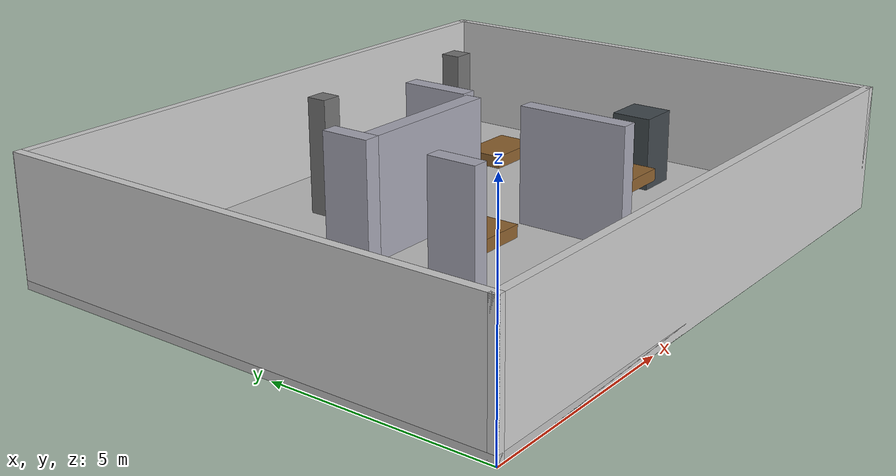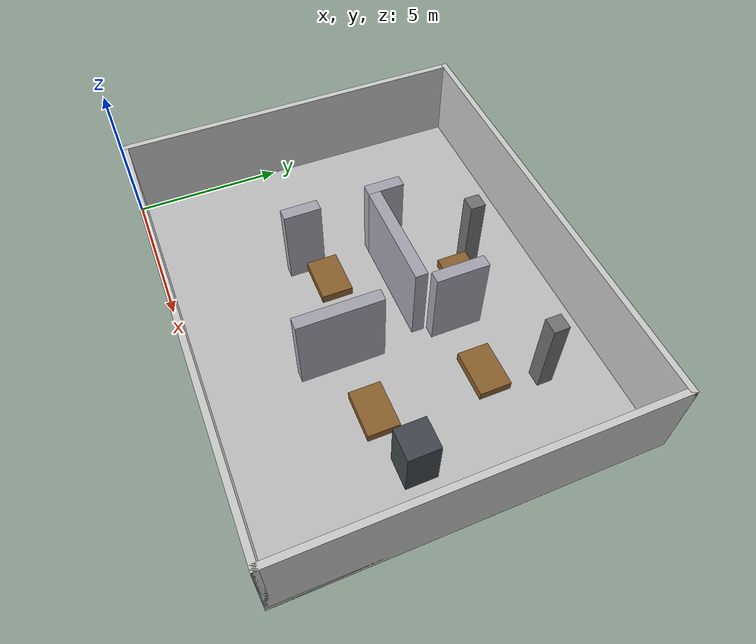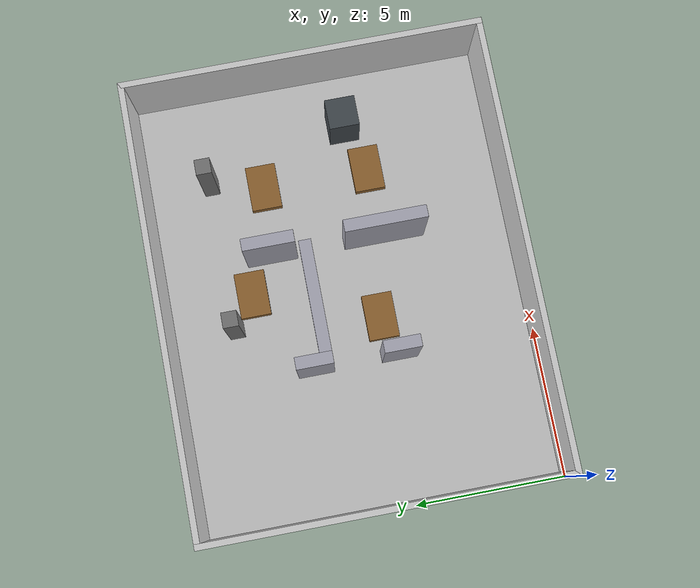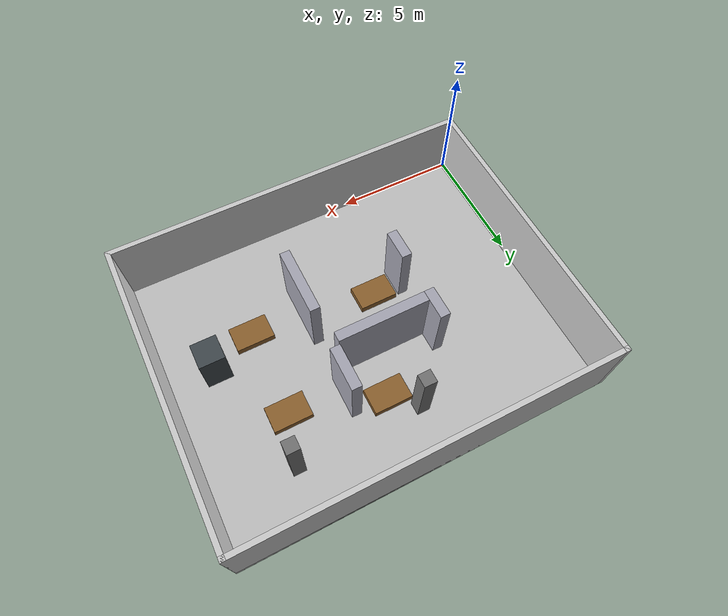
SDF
<?xml version="1.0" encoding="UTF-8" ?>
<sdf version="1.9">
  <world name="office">
    <physics type="ode">
      <max_step_size>0.001</max_step_size>
      <real_time_factor>1.0</real_time_factor>
      <real_time_update_rate>0</real_time_update_rate>
    </physics>
    <gravity>0 0 -9.8</gravity>
    <magnetic_field>6e-06 2.3e-05 -4.2e-05</magnetic_field>
    <atmosphere type="adiabatic" />
    <scene>
      <grid>false</grid>
      <ambient>0.8 0.8 0.8 1</ambient>
      <background>0.5 0.5 0.5 1</background>
      <shadows>true</shadows>
    </scene>
    <light name="sunUTC" type="directional">
      <pose>0 0 500 0 -0 0</pose>
      <cast_shadows>true</cast_shadows>
      <intensity>1</intensity>
      <direction>0.001 0.625 -0.78</direction>
      <diffuse>0.904 0.904 0.904 1</diffuse>
      <specular>0.271 0.271 0.271 1</specular>
      <attenuation>
        <range>2000</range>
        <linear>0</linear>
        <constant>1</constant>
        <quadratic>0</quadratic>
      </attenuation>
      <spot>
        <inner_angle>0</inner_angle>
        <outer_angle>0</outer_angle>
        <falloff>0</falloff>
      </spot>
    </light>
    <spherical_coordinates>
      <surface_model>EARTH_WGS84</surface_model>
      <world_frame_orientation>ENU</world_frame_orientation>
      <latitude_deg>51.9906361</latitude_deg>
      <longitude_deg>4.3767874</longitude_deg>
      <elevation>45.110</elevation>
    </spherical_coordinates>
    <model name="floor">
      <static>true</static>
      <pose>7.5 6.0 0.1 0.000000 0.000000 0.000000</pose>
      <link name="link">
          <collision name="collision">
            <pose>0.0 0.0 0.0 0.000000 0.000000 0.000000</pose>
            <geometry>
              <box><size>15.0 12.0 0.2</size></box>
            </geometry>
          </collision>
          <visual name="visual">
            <pose>0.0 0.0 0.0 0.000000 0.000000 0.000000</pose>
            <geometry>
              <box><size>15.0 12.0 0.2</size></box>
            </geometry>
            <material>
              <ambient>0.75 0.75 0.75 1</ambient>
              <diffuse>0.75 0.75 0.75 1</diffuse>
              <specular>0.1 0.1 0.1 1</specular>
            </material>
          </visual>
      </link>
    </model>
    <model name="wall_south">
      <static>true</static>
      <pose>7.5 0.1 1.5 0.000000 0.000000 0.000000</pose>
      <link name="link">
          <collision name="collision">
            <pose>0.0 0.0 0.0 0.000000 0.000000 0.000000</pose>
            <geometry>
              <box><size>15.0 0.2 3.0</size></box>
            </geometry>
          </collision>
          <visual name="visual">
            <pose>0.0 0.0 0.0 0.000000 0.000000 0.000000</pose>
            <geometry>
              <box><size>15.0 0.2 3.0</size></box>
            </geometry>
            <material>
              <ambient>0.8 0.8 0.8 1</ambient>
              <diffuse>0.8 0.8 0.8 1</diffuse>
              <specular>0.1 0.1 0.1 1</specular>
            </material>
          </visual>
      </link>
    </model>
    <model name="wall_north">
      <static>true</static>
      <pose>7.5 11.9 1.5 0.000000 0.000000 0.000000</pose>
      <link name="link">
          <collision name="collision">
            <pose>0.0 0.0 0.0 0.000000 0.000000 0.000000</pose>
            <geometry>
              <box><size>15.0 0.2 3.0</size></box>
            </geometry>
          </collision>
          <visual name="visual">
            <pose>0.0 0.0 0.0 0.000000 0.000000 0.000000</pose>
            <geometry>
              <box><size>15.0 0.2 3.0</size></box>
            </geometry>
            <material>
              <ambient>0.8 0.8 0.8 1</ambient>
              <diffuse>0.8 0.8 0.8 1</diffuse>
              <specular>0.1 0.1 0.1 1</specular>
            </material>
          </visual>
      </link>
    </model>
    <model name="wall_west">
      <static>true</static>
      <pose>0.1 6.0 1.5 0.000000 0.000000 0.000000</pose>
      <link name="link">
          <collision name="collision">
            <pose>0.0 0.0 0.0 0.000000 0.000000 0.000000</pose>
            <geometry>
              <box><size>0.2 12.0 3.0</size></box>
            </geometry>
          </collision>
          <visual name="visual">
            <pose>0.0 0.0 0.0 0.000000 0.000000 0.000000</pose>
            <geometry>
              <box><size>0.2 12.0 3.0</size></box>
            </geometry>
            <material>
              <ambient>0.8 0.8 0.8 1</ambient>
              <diffuse>0.8 0.8 0.8 1</diffuse>
              <specular>0.1 0.1 0.1 1</specular>
            </material>
          </visual>
      </link>
    </model>
    <model name="wall_east">
      <static>true</static>
      <pose>14.9 6.0 1.5 0.000000 0.000000 0.000000</pose>
      <link name="link">
          <collision name="collision">
            <pose>0.0 0.0 0.0 0.000000 0.000000 0.000000</pose>
            <geometry>
              <box><size>0.2 12.0 3.0</size></box>
            </geometry>
          </collision>
          <visual name="visual">
            <pose>0.0 0.0 0.0 0.000000 0.000000 0.000000</pose>
            <geometry>
              <box><size>0.2 12.0 3.0</size></box>
            </geometry>
            <material>
              <ambient>0.8 0.8 0.8 1</ambient>
              <diffuse>0.8 0.8 0.8 1</diffuse>
              <specular>0.1 0.1 0.1 1</specular>
            </material>
          </visual>
      </link>
    </model>
    <model name="partition_a_lower">
      <static>true</static>
      <pose>5.0 4.6 1.5 0.000000 0.000000 0.000000</pose>
      <link name="link">
          <collision name="collision">
            <pose>0.0 0.0 0.0 0.000000 0.000000 0.000000</pose>
            <geometry>
              <box><size>0.4 1.2 3.0</size></box>
            </geometry>
          </collision>
          <visual name="visual">
            <pose>0.0 0.0 0.0 0.000000 0.000000 0.000000</pose>
            <geometry>
              <box><size>0.4 1.2 3.0</size></box>
            </geometry>
            <material>
              <ambient>0.65 0.65 0.7 1</ambient>
              <diffuse>0.65 0.65 0.7 1</diffuse>
              <specular>0.1 0.1 0.1 1</specular>
            </material>
          </visual>
      </link>
    </model>
    <model name="partition_a_upper">
      <static>true</static>
      <pose>5.0 7.4 1.5 0.000000 0.000000 0.000000</pose>
      <link name="link">
          <collision name="collision">
            <pose>0.0 0.0 0.0 0.000000 0.000000 0.000000</pose>
            <geometry>
              <box><size>0.4 1.2 3.0</size></box>
            </geometry>
          </collision>
          <visual name="visual">
            <pose>0.0 0.0 0.0 0.000000 0.000000 0.000000</pose>
            <geometry>
              <box><size>0.4 1.2 3.0</size></box>
            </geometry>
            <material>
              <ambient>0.65 0.65 0.7 1</ambient>
              <diffuse>0.65 0.65 0.7 1</diffuse>
              <specular>0.1 0.1 0.1 1</specular>
            </material>
          </visual>
      </link>
    </model>
    <model name="partition_b_lower">
      <static>true</static>
      <pose>9.0 4.35 1.5 0.000000 0.000000 0.000000</pose>
      <link name="link">
          <collision name="collision">
            <pose>0.0 0.0 0.0 0.000000 0.000000 0.000000</pose>
            <geometry>
              <box><size>0.4 2.7 3.0</size></box>
            </geometry>
          </collision>
          <visual name="visual">
            <pose>0.0 0.0 0.0 0.000000 0.000000 0.000000</pose>
            <geometry>
              <box><size>0.4 2.7 3.0</size></box>
            </geometry>
            <material>
              <ambient>0.65 0.65 0.7 1</ambient>
              <diffuse>0.65 0.65 0.7 1</diffuse>
              <specular>0.1 0.1 0.1 1</specular>
            </material>
          </visual>
      </link>
    </model>
    <model name="partition_b_upper">
      <static>true</static>
      <pose>9.0 8.15 1.5 0.000000 0.000000 0.000000</pose>
      <link name="link">
          <collision name="collision">
            <pose>0.0 0.0 0.0 0.000000 0.000000 0.000000</pose>
            <geometry>
              <box><size>0.4 1.7 3.0</size></box>
            </geometry>
          </collision>
          <visual name="visual">
            <pose>0.0 0.0 0.0 0.000000 0.000000 0.000000</pose>
            <geometry>
              <box><size>0.4 1.7 3.0</size></box>
            </geometry>
            <material>
              <ambient>0.65 0.65 0.7 1</ambient>
              <diffuse>0.65 0.65 0.7 1</diffuse>
              <specular>0.1 0.1 0.1 1</specular>
            </material>
          </visual>
      </link>
    </model>
    <model name="partition_connector">
      <static>true</static>
      <pose>7.0 7.0 1.5 0.000000 0.000000 0.000000</pose>
      <link name="link">
          <collision name="collision">
            <pose>0.0 0.0 0.0 0.000000 0.000000 0.000000</pose>
            <geometry>
              <box><size>3.6 0.4 3.0</size></box>
            </geometry>
          </collision>
          <visual name="visual">
            <pose>0.0 0.0 0.0 0.000000 0.000000 0.000000</pose>
            <geometry>
              <box><size>3.6 0.4 3.0</size></box>
            </geometry>
            <material>
              <ambient>0.65 0.65 0.7 1</ambient>
              <diffuse>0.65 0.65 0.7 1</diffuse>
              <specular>0.1 0.1 0.1 1</specular>
            </material>
          </visual>
      </link>
    </model>
    <model name="desk_1">
      <static>true</static>
      <pose>6.25 5.0 0.85 0.000000 0.000000 0.000000</pose>
      <link name="link">
          <collision name="collision">
            <pose>0.0 0.0 0.0 0.000000 0.000000 0.000000</pose>
            <geometry>
              <box><size>1.5 1.0 0.3</size></box>
            </geometry>
          </collision>
          <visual name="visual">
            <pose>0.0 0.0 0.0 0.000000 0.000000 0.000000</pose>
            <geometry>
              <box><size>1.5 1.0 0.3</size></box>
            </geometry>
            <material>
              <ambient>0.55 0.38 0.18 1</ambient>
              <diffuse>0.55 0.38 0.18 1</diffuse>
              <specular>0.1 0.1 0.1 1</specular>
            </material>
          </visual>
      </link>
    </model>
    <model name="desk_2">
      <static>true</static>
      <pose>7.75 9.0 0.85 0.000000 0.000000 0.000000</pose>
      <link name="link">
          <collision name="collision">
            <pose>0.0 0.0 0.0 0.000000 0.000000 0.000000</pose>
            <geometry>
              <box><size>1.5 1.0 0.3</size></box>
            </geometry>
          </collision>
          <visual name="visual">
            <pose>0.0 0.0 0.0 0.000000 0.000000 0.000000</pose>
            <geometry>
              <box><size>1.5 1.0 0.3</size></box>
            </geometry>
            <material>
              <ambient>0.55 0.38 0.18 1</ambient>
              <diffuse>0.55 0.38 0.18 1</diffuse>
              <specular>0.1 0.1 0.1 1</specular>
            </material>
          </visual>
      </link>
    </model>
    <model name="desk_3">
      <static>true</static>
      <pose>11.25 4.5 0.85 0.000000 0.000000 0.000000</pose>
      <link name="link">
          <collision name="collision">
            <pose>0.0 0.0 0.0 0.000000 0.000000 0.000000</pose>
            <geometry>
              <box><size>1.5 1.0 0.3</size></box>
            </geometry>
          </collision>
          <visual name="visual">
            <pose>0.0 0.0 0.0 0.000000 0.000000 0.000000</pose>
            <geometry>
              <box><size>1.5 1.0 0.3</size></box>
            </geometry>
            <material>
              <ambient>0.55 0.38 0.18 1</ambient>
              <diffuse>0.55 0.38 0.18 1</diffuse>
              <specular>0.1 0.1 0.1 1</specular>
            </material>
          </visual>
      </link>
    </model>
    <model name="desk_4">
      <static>true</static>
      <pose>11.25 8.0 0.85 0.000000 0.000000 0.000000</pose>
      <link name="link">
          <collision name="collision">
            <pose>0.0 0.0 0.0 0.000000 0.000000 0.000000</pose>
            <geometry>
              <box><size>1.5 1.0 0.3</size></box>
            </geometry>
          </collision>
          <visual name="visual">
            <pose>0.0 0.0 0.0 0.000000 0.000000 0.000000</pose>
            <geometry>
              <box><size>1.5 1.0 0.3</size></box>
            </geometry>
            <material>
              <ambient>0.55 0.38 0.18 1</ambient>
              <diffuse>0.55 0.38 0.18 1</diffuse>
              <specular>0.1 0.1 0.1 1</specular>
            </material>
          </visual>
      </link>
    </model>
    <model name="col_a">
      <static>true</static>
      <pose>6.75 9.75 1.5 0.000000 0.000000 0.000000</pose>
      <link name="link">
          <collision name="collision">
            <pose>0.0 0.0 0.0 0.000000 0.000000 0.000000</pose>
            <geometry>
              <box><size>0.5 0.5 3.0</size></box>
            </geometry>
          </collision>
          <visual name="visual">
            <pose>0.0 0.0 0.0 0.000000 0.000000 0.000000</pose>
            <geometry>
              <box><size>0.5 0.5 3.0</size></box>
            </geometry>
            <material>
              <ambient>0.45 0.45 0.45 1</ambient>
              <diffuse>0.45 0.45 0.45 1</diffuse>
              <specular>0.1 0.1 0.1 1</specular>
            </material>
          </visual>
      </link>
    </model>
    <model name="col_b">
      <static>true</static>
      <pose>11.75 9.75 1.5 0.000000 0.000000 0.000000</pose>
      <link name="link">
          <collision name="collision">
            <pose>0.0 0.0 0.0 0.000000 0.000000 0.000000</pose>
            <geometry>
              <box><size>0.5 0.5 3.0</size></box>
            </geometry>
          </collision>
          <visual name="visual">
            <pose>0.0 0.0 0.0 0.000000 0.000000 0.000000</pose>
            <geometry>
              <box><size>0.5 0.5 3.0</size></box>
            </geometry>
            <material>
              <ambient>0.45 0.45 0.45 1</ambient>
              <diffuse>0.45 0.45 0.45 1</diffuse>
              <specular>0.1 0.1 0.1 1</specular>
            </material>
          </visual>
      </link>
    </model>
    <model name="rack">
      <static>true</static>
      <pose>13.0 5.0 1.0 0.000000 0.000000 0.000000</pose>
      <link name="link">
          <collision name="collision">
            <pose>0.0 0.0 0.0 0.000000 0.000000 0.000000</pose>
            <geometry>
              <box><size>1.0 1.0 2.0</size></box>
            </geometry>
          </collision>
          <visual name="visual">
            <pose>0.0 0.0 0.0 0.000000 0.000000 0.000000</pose>
            <geometry>
              <box><size>1.0 1.0 2.0</size></box>
            </geometry>
            <material>
              <ambient>0.25 0.28 0.3 1</ambient>
              <diffuse>0.25 0.28 0.3 1</diffuse>
              <specular>0.1 0.1 0.1 1</specular>
            </material>
          </visual>
      </link>
    </model>
  </world>
</sdf>
